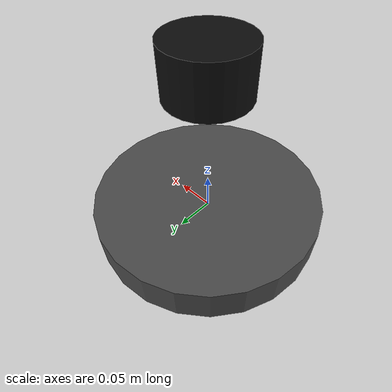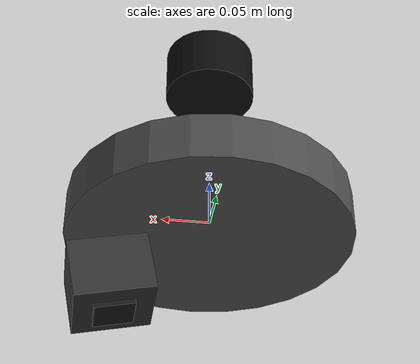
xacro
<?xml version="1.0"?>
<robot name="marvin_drohne_alles" xmlns:xacro="http://www.ros.org/wiki/xacro">
  <xacro:property name="front_sensor_offset_x" value="0.23"/>
  <xacro:property name="front_sensor_offset_y" value="0.0"/>
  <xacro:property name="front_sensor_offset_z" value="0.08"/>
  <xacro:property name="lidar_offset_x" value="0.0"/>
  <xacro:property name="lidar_offset_y" value="0.0"/>
  <xacro:property name="lidar_offset_z" value="0.20"/>

  <link name="base_link">
    <inertial>
      <mass value="1.0"/>
      <origin xyz="0 0 0" rpy="0 0 0"/>
      <inertia ixx="0.02" ixy="0.0" ixz="0.0" iyy="0.02" iyz="0.0" izz="0.04"/>
    </inertial>
    <visual>
      <origin xyz="0 0 0" rpy="0 0 0"/>
      <geometry>
        <cylinder radius="0.15" length="0.05"/>
      </geometry>
      <material name="grey">
        <color rgba="0.3 0.3 0.3 1.0"/>
      </material>
    </visual>
  </link>

  <link name="front_sensor_mount_link">
    <inertial>
      <mass value="0.05"/>
      <origin xyz="0 0 0" rpy="0 0 0"/>
      <inertia ixx="0.0001" ixy="0.0" ixz="0.0" iyy="0.0001" iyz="0.0" izz="0.0001"/>
    </inertial>
    <visual>
      <origin xyz="0 0 0" rpy="0 0 0"/>
      <geometry>
        <box size="0.08 0.08 0.06"/>
      </geometry>
      <material name="dark_grey">
        <color rgba="0.2 0.2 0.2 1.0"/>
      </material>
    </visual>
  </link>

  <joint name="front_sensor_mount_joint" type="fixed">
    <parent link="base_link"/>
    <child link="front_sensor_mount_link"/>
    <origin xyz="0.1 0 -0.08" rpy="0 0.2 0"/>
  </joint>

  <link name="front_rgb_camera_link">
    <visual>
      <origin xyz="0 0 0" rpy="0 0 0"/>
      <geometry>
        <box size="0.04 0.04 0.04"/>
      </geometry>
      <material name="camera_grey">
        <color rgba="0.4 0.4 0.4 1.0"/>
      </material>
    </visual>
  </link>

  <joint name="front_rgb_camera_joint" type="fixed">
    <parent link="front_sensor_mount_link"/>
    <child link="front_rgb_camera_link"/>
    <origin xyz="0 0 0.015" rpy="0 0 0"/>
  </joint>

  <link name="front_rgb_camera_optical_frame"/>

  <joint name="front_rgb_optical_joint" type="fixed">
    <parent link="front_rgb_camera_link"/>
    <child link="front_rgb_camera_optical_frame"/>
    <origin xyz="0 0 0" rpy="-1.57079632679 0 -1.57079632679"/>
  </joint>

  <link name="front_depth_camera_link">
    <visual>
      <origin xyz="0 0 0" rpy="0 0 0"/>
      <geometry>
        <box size="0.04 0.04 0.04"/>
      </geometry>
      <material name="camera_dark">
        <color rgba="0.1 0.1 0.1 1.0"/>
      </material>
    </visual>
  </link>

  <joint name="front_depth_camera_joint" type="fixed">
    <parent link="front_sensor_mount_link"/>
    <child link="front_depth_camera_link"/>
    <origin xyz="0 0 -0.015" rpy="0 0 0"/>
  </joint>

  <link name="front_depth_camera_optical_frame"/>

  <joint name="front_depth_optical_joint" type="fixed">
    <parent link="front_depth_camera_link"/>
    <child link="front_depth_camera_optical_frame"/>
    <origin xyz="0 0 0" rpy="0 0 0"/>
  </joint>

  <link name="top_lidar_link">
    <inertial>
      <mass value="0.02"/>
      <origin xyz="0 0 0" rpy="0 0 0"/>
      <inertia ixx="5e-05" ixy="0.0" ixz="0.0" iyy="5e-05" iyz="0.0" izz="5e-05"/>
    </inertial>
    <visual>
      <origin xyz="0 0 0" rpy="0 0 0"/>
      <geometry>
        <cylinder radius="0.05" length="0.06"/>
      </geometry>
      <material name="lidar_black">
        <color rgba="0.05 0.05 0.05 1.0"/>
      </material>
    </visual>
  </link>

  <joint name="top_lidar_joint" type="fixed">
    <parent link="base_link"/>
    <child link="top_lidar_link"/>
    <origin xyz="${lidar_offset_x} ${lidar_offset_y} ${lidar_offset_z}" rpy="0 0 0"/>
  </joint>

  <link name="top_lidar_frame"/>

  <joint name="top_lidar_frame_joint" type="fixed">
    <parent link="top_lidar_link"/>
    <child link="top_lidar_frame"/>
    <origin xyz="0 0 0" rpy="0 0 0"/>
  </joint>

  <link name="mid_360_link">
    <inertial>
      <mass value="0.02"/>
      <origin xyz="0 0 0" rpy="0 0 0"/>
      <inertia ixx="5e-05" ixy="0.0" ixz="0.0" iyy="5e-05" iyz="0.0" izz="5e-05"/>
    </inertial>
    <visual>
      <origin xyz="0 0 0" rpy="0 0 0"/>
      <geometry>
        <cylinder radius="0.05" length="0.06"/>
      </geometry>
      <material name="lidar_black">
        <color rgba="0.05 0.05 0.05 1.0"/>
      </material>
    </visual>
  </link>

  <joint name="mid_360_joint" type="fixed">
    <parent link="base_link"/>
    <child link="mid_360_link"/>
    <origin xyz="${lidar_offset_x} ${lidar_offset_y} ${lidar_offset_z}" rpy="0 0 0"/>
  </joint>

  <link name="mid_360_frame"/>

  <joint name="mid_360_frame_joint" type="fixed">
    <parent link="mid_360_link"/>
    <child link="mid_360_frame"/>
    <origin xyz="0 0 0" rpy="0 0 0"/>
  </joint>
</robot>
